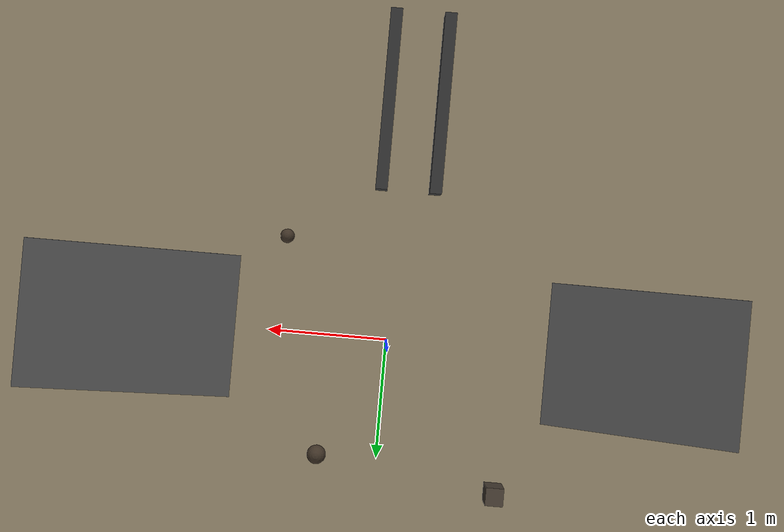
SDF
<?xml version="1.0"?>
<sdf version="1.9">
  <world name="ugv_terrain_world">
    <physics name="1ms" type="ignored">
      <max_step_size>0.002</max_step_size>
      <real_time_factor>1.0</real_time_factor>
    </physics>
    <plugin filename="gz-sim-physics-system" name="gz::sim::systems::Physics"/>
    <plugin filename="gz-sim-user-commands-system" name="gz::sim::systems::UserCommands"/>
    <plugin filename="gz-sim-scene-broadcaster-system" name="gz::sim::systems::SceneBroadcaster"/>
    <plugin filename="gz-sim-sensors-system" name="gz::sim::systems::Sensors">
      <render_engine>ogre2</render_engine>
    </plugin>
    <plugin filename="gz-sim-imu-system" name="gz::sim::systems::Imu"/>
    <plugin filename="gz-sim-navsat-system" name="gz::sim::systems::NavSat"/>

    <light type="directional" name="sun">
      <cast_shadows>true</cast_shadows>
      <pose>0 0 10 0 0 0</pose>
      <diffuse>0.8 0.8 0.8 1</diffuse>
      <specular>0.2 0.2 0.2 1</specular>
      <direction>-0.5 0.1 -0.9</direction>
    </light>

    <gravity>0 0 -9.8066</gravity>

    <!-- Base ground: higher-friction gravel-like surface -->
    <model name="ground_plane">
      <static>true</static>
      <link name="link">
        <collision name="collision">
          <geometry><plane><normal>0 0 1</normal><size>50 50</size></plane></geometry>
          <surface>
            <friction><ode><mu>1.2</mu><mu2>1.2</mu2></ode></friction>
          </surface>
        </collision>
        <visual name="visual">
          <geometry><plane><normal>0 0 1</normal><size>50 50</size></plane></geometry>
          <material>
            <ambient>0.45 0.42 0.35 1</ambient>
            <diffuse>0.55 0.5 0.4 1</diffuse>
          </material>
        </visual>
      </link>
    </model>

    <!-- Ramp #1: gentle incline, tests forward climb -->
    <model name="ramp_up">
      <static>true</static>
      <pose>2.0 0 0.15 0 -0.25 0</pose>
      <link name="link">
        <collision name="collision"><geometry><box><size>2.0 1.2 0.05</size></box></geometry></collision>
        <visual name="visual">
          <geometry><box><size>2.0 1.2 0.05</size></box></geometry>
          <material><ambient>0.3 0.3 0.3 1</ambient></material>
        </visual>
      </link>
    </model>

    <!-- Ramp #2: steeper decline, tests descent stability -->
    <model name="ramp_down">
      <static>true</static>
      <pose>-2.0 0 0.2 0 0.35 0</pose>
      <link name="link">
        <collision name="collision"><geometry><box><size>1.8 1.2 0.05</size></box></geometry></collision>
        <visual name="visual">
          <geometry><box><size>1.8 1.2 0.05</size></box></geometry>
          <material><ambient>0.3 0.3 0.3 1</ambient></material>
        </visual>
      </link>
    </model>

    <!-- Scattered rocks: tests skid-steer obstacle traversal -->
    <model name="rock_1">
      <static>true</static>
      <pose>0.5 1.0 0.08 0 0 0</pose>
      <link name="link">
        <collision name="collision"><geometry><sphere><radius>0.08</radius></sphere></geometry></collision>
        <visual name="visual"><geometry><sphere><radius>0.08</radius></sphere></geometry>
          <material><ambient>0.25 0.2 0.15 1</ambient></material></visual>
      </link>
    </model>
    <model name="rock_2">
      <static>true</static>
      <pose>0.9 -0.8 0.06 0 0 0</pose>
      <link name="link">
        <collision name="collision"><geometry><sphere><radius>0.06</radius></sphere></geometry></collision>
        <visual name="visual"><geometry><sphere><radius>0.06</radius></sphere></geometry>
          <material><ambient>0.25 0.2 0.15 1</ambient></material></visual>
      </link>
    </model>
    <model name="rock_3">
      <static>true</static>
      <pose>-1.0 1.2 0.1 0 0 0</pose>
      <link name="link">
        <collision name="collision"><geometry><box><size>0.15 0.15 0.2</size></box></geometry></collision>
        <visual name="visual"><geometry><box><size>0.15 0.15 0.2</size></box></geometry>
          <material><ambient>0.28 0.24 0.2 1</ambient></material></visual>
      </link>
    </model>

    <!-- Trench/gap: tests belt bridging vs wheeled failure case -->
    <model name="trench_wall_a">
      <static>true</static>
      <pose>-0.3 -2.0 0.1 0 0 0</pose>
      <link name="link">
        <collision name="collision"><geometry><box><size>0.1 1.5 0.2</size></box></geometry></collision>
        <visual name="visual"><geometry><box><size>0.1 1.5 0.2</size></box></geometry>
          <material><ambient>0.2 0.2 0.2 1</ambient></material></visual>
      </link>
    </model>
    <model name="trench_wall_b">
      <static>true</static>
      <pose>0.15 -2.0 0.1 0 0 0</pose>
      <link name="link">
        <collision name="collision"><geometry><box><size>0.1 1.5 0.2</size></box></geometry></collision>
        <visual name="visual"><geometry><box><size>0.1 1.5 0.2</size></box></geometry>
          <material><ambient>0.2 0.2 0.2 1</ambient></material></visual>
      </link>
    </model>

    <physics type="ode">
      <real_time_update_rate>1000</real_time_update_rate>
      <max_step_size>0.001</max_step_size>
    </physics>

  </world>
</sdf>
